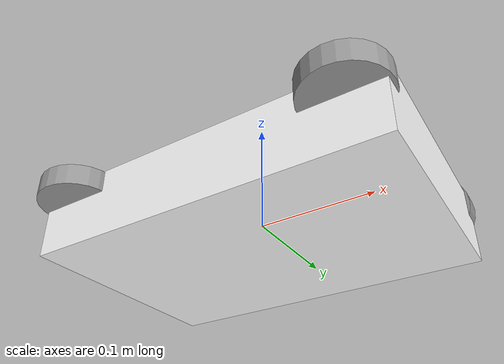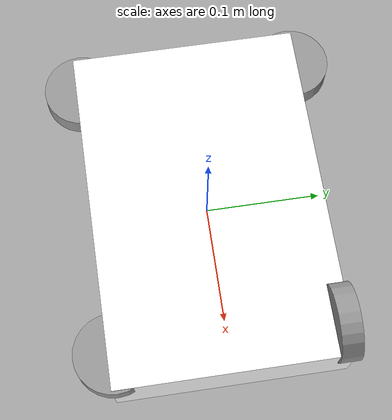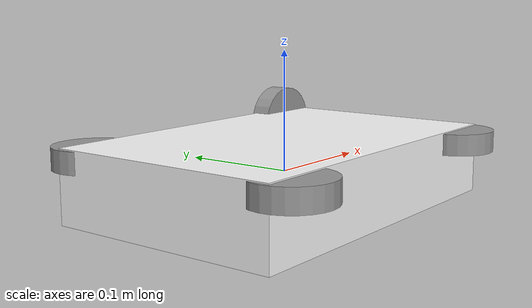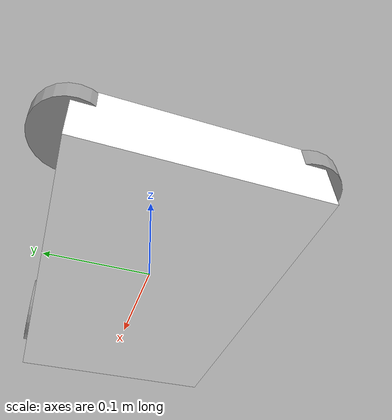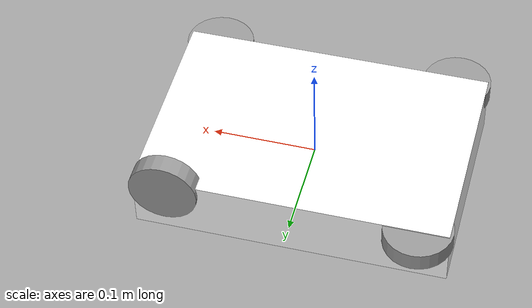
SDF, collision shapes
<sdf version='1.11'>
  <model name='omni4_robot'>
    <link name='base_link'>
      <inertial>
        <pose>0 0 0 0 0 0</pose>
        <mass>2</mass>
        <inertia>
          <ixx>0.01</ixx>
          <ixy>0</ixy>
          <ixz>0</ixz>
          <iyy>0.01</iyy>
          <iyz>0</iyz>
          <izz>0.02</izz>
        </inertia>
      </inertial>
      <collision name='base_link_collision'>
        <pose>0 0 0 0 0 0</pose>
        <geometry>
          <box>
            <size>0.29999999999999999 0.20000000000000001 0.059999999999999998</size>
          </box>
        </geometry>
      </collision>
      <visual name='base_link_visual'>
        <pose>0 0 0 0 0 0</pose>
        <geometry>
          <box>
            <size>0.29999999999999999 0.20000000000000001 0.059999999999999998</size>
          </box>
        </geometry>
        <material>
          <diffuse>1 1 1 0</diffuse>
          <ambient>1 1 1 0</ambient>
        </material>
      </visual>
    </link>
    <joint name='wheel_front_left_joint' type='revolute'>
      <pose relative_to='base_link'>0.12 0.095000000000000001 0.02 0.78529999999999978 0 0</pose>
      <parent>base_link</parent>
      <child>wheel_front_left_link</child>
      <axis>
        <xyz>0 0 1</xyz>
        <limit>
          <effort>10</effort>
          <velocity>20</velocity>
          <lower>-inf</lower>
          <upper>inf</upper>
        </limit>
        <dynamics>
          <damping>0</damping>
          <friction>0</friction>
          <spring_reference>0</spring_reference>
          <spring_stiffness>0</spring_stiffness>
        </dynamics>
      </axis>
    </joint>
    <link name='wheel_front_left_link'>
      <pose relative_to='wheel_front_left_joint'>0 0 0 0 0 0</pose>
      <inertial>
        <pose>0 0 0 0 0 0</pose>
        <mass>0.10000000000000001</mass>
        <inertia>
          <ixx>1.0000000000000001e-05</ixx>
          <ixy>0</ixy>
          <ixz>0</ixz>
          <iyy>1.0000000000000001e-05</iyy>
          <iyz>0</iyz>
          <izz>2.0000000000000002e-05</izz>
        </inertia>
      </inertial>
      <collision name='wheel_front_left_link_collision'>
        <pose>0 0 0 0.78529999999999978 0 0</pose>
        <geometry>
          <cylinder>
            <length>0.017999999999999999</length>
            <radius>0.033000000000000002</radius>
          </cylinder>
        </geometry>
        <surface>
          <contact>
            <ode/>
          </contact>
          <friction>
            <ode/>
          </friction>
        </surface>
      </collision>
      <visual name='wheel_front_left_link_visual'>
        <pose>0 0 0 0.78529999999999978 0 0</pose>
        <geometry>
          <mesh>
            <scale>1 1 1</scale>
            <uri>model://omni4/meshes/omni_housing.stl</uri>
          </mesh>
        </geometry>
        <material>
          <script>
            <name>Gazebo/Grey</name>
            <uri>file://media/materials/scripts/gazebo.material</uri>
          </script>
        </material>
      </visual>
    </link>
    <joint name='wheel_front_right_joint' type='revolute'>
      <pose relative_to='base_link'>0.12 -0.095000000000000001 0.02 0 0 0</pose>
      <parent>base_link</parent>
      <child>wheel_front_right_link</child>
      <axis>
        <xyz>0 0 1</xyz>
        <limit>
          <effort>10</effort>
          <velocity>20</velocity>
          <lower>-inf</lower>
          <upper>inf</upper>
        </limit>
        <dynamics>
          <damping>0</damping>
          <friction>0</friction>
          <spring_reference>0</spring_reference>
          <spring_stiffness>0</spring_stiffness>
        </dynamics>
      </axis>
    </joint>
    <link name='wheel_front_right_link'>
      <pose relative_to='wheel_front_right_joint'>0 0 0 0 0 0</pose>
      <inertial>
        <pose>0 0 0 0 0 0</pose>
        <mass>0.10000000000000001</mass>
        <inertia>
          <ixx>1.0000000000000001e-05</ixx>
          <ixy>0</ixy>
          <ixz>0</ixz>
          <iyy>1.0000000000000001e-05</iyy>
          <iyz>0</iyz>
          <izz>2.0000000000000002e-05</izz>
        </inertia>
      </inertial>
      <collision name='wheel_front_right_link_collision'>
        <pose>0 0 0 0 0 0</pose>
        <geometry>
          <cylinder>
            <length>0.017999999999999999</length>
            <radius>0.033000000000000002</radius>
          </cylinder>
        </geometry>
        <surface>
          <contact>
            <ode/>
          </contact>
          <friction>
            <ode/>
          </friction>
        </surface>
      </collision>
      <visual name='wheel_front_right_link_visual'>
        <pose>0 0 0 0 0 0</pose>
        <geometry>
          <mesh>
            <scale>1 1 1</scale>
            <uri>model://omni4/meshes/omni_housing.stl</uri>
          </mesh>
        </geometry>
        <material>
          <script>
            <name>Gazebo/Grey</name>
            <uri>file://media/materials/scripts/gazebo.material</uri>
          </script>
        </material>
      </visual>
    </link>
    <joint name='wheel_rear_left_joint' type='revolute'>
      <pose relative_to='base_link'>-0.12 0.095000000000000001 0.02 0 0 0</pose>
      <parent>base_link</parent>
      <child>wheel_rear_left_link</child>
      <axis>
        <xyz>0 0 1</xyz>
        <limit>
          <effort>10</effort>
          <velocity>20</velocity>
          <lower>-inf</lower>
          <upper>inf</upper>
        </limit>
        <dynamics>
          <damping>0</damping>
          <friction>0</friction>
          <spring_reference>0</spring_reference>
          <spring_stiffness>0</spring_stiffness>
        </dynamics>
      </axis>
    </joint>
    <link name='wheel_rear_left_link'>
      <pose relative_to='wheel_rear_left_joint'>0 0 0 0 0 0</pose>
      <inertial>
        <pose>0 0 0 0 0 0</pose>
        <mass>0.10000000000000001</mass>
        <inertia>
          <ixx>1.0000000000000001e-05</ixx>
          <ixy>0</ixy>
          <ixz>0</ixz>
          <iyy>1.0000000000000001e-05</iyy>
          <iyz>0</iyz>
          <izz>2.0000000000000002e-05</izz>
        </inertia>
      </inertial>
      <collision name='wheel_rear_left_link_collision'>
        <pose>0 0 0 0 0 0</pose>
        <geometry>
          <cylinder>
            <length>0.017999999999999999</length>
            <radius>0.033000000000000002</radius>
          </cylinder>
        </geometry>
        <surface>
          <contact>
            <ode/>
          </contact>
          <friction>
            <ode/>
          </friction>
        </surface>
      </collision>
      <visual name='wheel_rear_left_link_visual'>
        <pose>0 0 0 0 0 0</pose>
        <geometry>
          <mesh>
            <scale>1 1 1</scale>
            <uri>model://omni4/meshes/omni_housing.stl</uri>
          </mesh>
        </geometry>
        <material>
          <script>
            <name>Gazebo/Grey</name>
            <uri>file://media/materials/scripts/gazebo.material</uri>
          </script>
        </material>
      </visual>
    </link>
    <joint name='wheel_rear_right_joint' type='revolute'>
      <pose relative_to='base_link'>-0.12 -0.095000000000000001 0.02 0 0 0</pose>
      <parent>base_link</parent>
      <child>wheel_rear_right_link</child>
      <axis>
        <xyz>0 0 1</xyz>
        <limit>
          <effort>10</effort>
          <velocity>20</velocity>
          <lower>-inf</lower>
          <upper>inf</upper>
        </limit>
        <dynamics>
          <damping>0</damping>
          <friction>0</friction>
          <spring_reference>0</spring_reference>
          <spring_stiffness>0</spring_stiffness>
        </dynamics>
      </axis>
    </joint>
    <link name='wheel_rear_right_link'>
      <pose relative_to='wheel_rear_right_joint'>0 0 0 0 0 0</pose>
      <inertial>
        <pose>0 0 0 0 0 0</pose>
        <mass>0.10000000000000001</mass>
        <inertia>
          <ixx>1.0000000000000001e-05</ixx>
          <ixy>0</ixy>
          <ixz>0</ixz>
          <iyy>1.0000000000000001e-05</iyy>
          <iyz>0</iyz>
          <izz>2.0000000000000002e-05</izz>
        </inertia>
      </inertial>
      <collision name='wheel_rear_right_link_collision'>
        <pose>0 0 0 0 0 0</pose>
        <geometry>
          <cylinder>
            <length>0.017999999999999999</length>
            <radius>0.033000000000000002</radius>
          </cylinder>
        </geometry>
        <surface>
          <contact>
            <ode/>
          </contact>
          <friction>
            <ode/>
          </friction>
        </surface>
      </collision>
      <visual name='wheel_rear_right_link_visual'>
        <pose>0 0 0 0 0 0</pose>
        <geometry>
          <mesh>
            <scale>1 1 1</scale>
            <uri>model://omni4/meshes/omni_housing.stl</uri>
          </mesh>
        </geometry>
        <material>
          <script>
            <name>Gazebo/Grey</name>
            <uri>file://media/materials/scripts/gazebo.material</uri>
          </script>
        </material>
      </visual>
    </link>
    <plugin name='gz_ros2_control::GazeboSimROS2ControlPlugin' filename='libgz_ros2_control-system.so'>
      <parameters>/home/hao/Ubuntu_3/Private/simulator/ros2_ws/install/gazebo_simulator/share/gazebo_simulator/config/controller_omni4.yaml</parameters>
    </plugin>
  </model>
</sdf>
